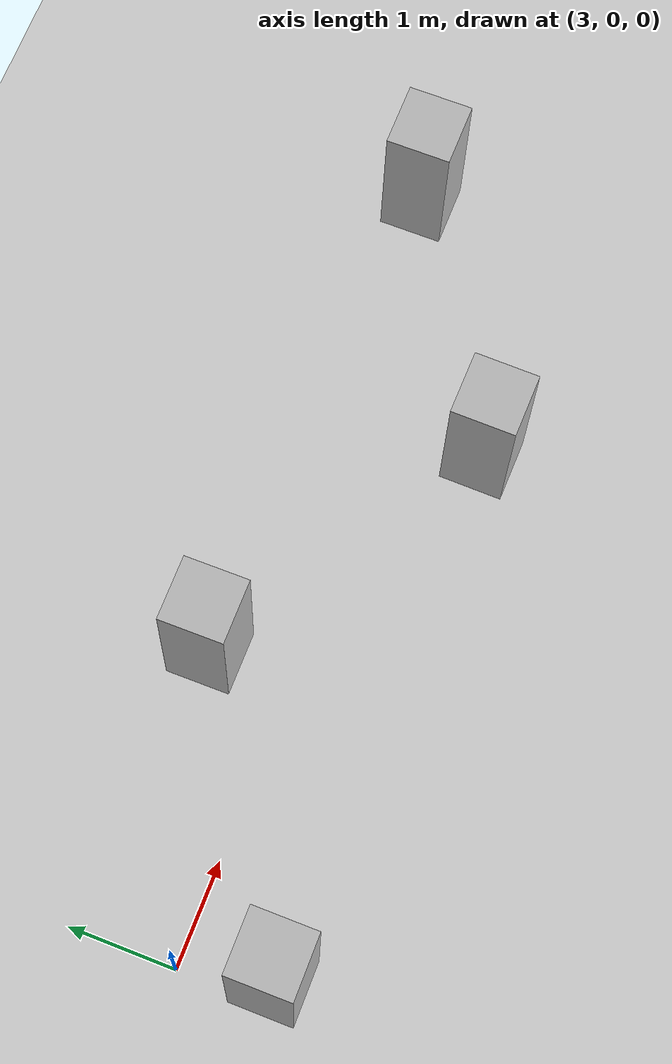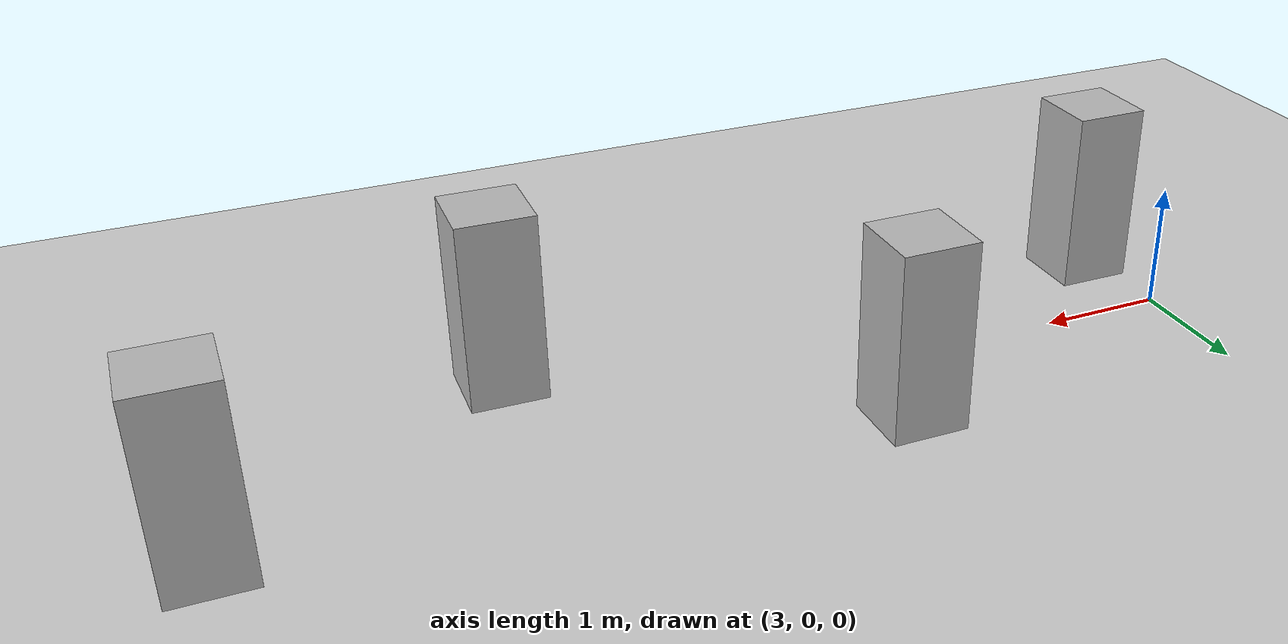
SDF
<?xml version="1.0"?>
<sdf version="1.6">
  <world name="v2-04c-q-static-s4493">
    <gravity>0 0 -9.81</gravity>
    <physics name="v2_deterministic" type="ode">
      <max_step_size>0.002</max_step_size>
      <real_time_update_rate>500</real_time_update_rate>
    </physics>
    <include>
      <uri>model://sun</uri>
    </include>
    <include>
      <uri>model://ground_plane</uri>
    </include>
    <model name="q-pillar-1">
      <static>true</static>
      <pose>3.209805915 -0.807758795 0.750000000 0 0 0.000171217</pose>
      <link name="link">
        <collision name="collision">
          <geometry>
            <box>
              <size>0.600000 0.600000 1.500000</size>
            </box>
          </geometry>
        </collision>
        <visual name="visual">
          <geometry>
            <box>
              <size>0.600000 0.600000 1.500000</size>
            </box>
          </geometry>
        </visual>
      </link>
    </model>
    <model name="q-pillar-2">
      <static>true</static>
      <pose>5.721271875 0.793565045 0.750000000 0 0 0.000608653</pose>
      <link name="link">
        <collision name="collision">
          <geometry>
            <box>
              <size>0.600000 0.600000 1.500000</size>
            </box>
          </geometry>
        </collision>
        <visual name="visual">
          <geometry>
            <box>
              <size>0.600000 0.600000 1.500000</size>
            </box>
          </geometry>
        </visual>
      </link>
    </model>
    <model name="q-pillar-3">
      <static>true</static>
      <pose>8.363540041 -0.841973130 0.750000000 0 0 -0.019559142</pose>
      <link name="link">
        <collision name="collision">
          <geometry>
            <box>
              <size>0.600000 0.600000 1.500000</size>
            </box>
          </geometry>
        </collision>
        <visual name="visual">
          <geometry>
            <box>
              <size>0.600000 0.600000 1.500000</size>
            </box>
          </geometry>
        </visual>
      </link>
    </model>
    <model name="q-pillar-4">
      <static>true</static>
      <pose>10.655255113 0.599157619 0.750000000 0 0 -0.005800082</pose>
      <link name="link">
        <collision name="collision">
          <geometry>
            <box>
              <size>0.600000 0.600000 1.500000</size>
            </box>
          </geometry>
        </collision>
        <visual name="visual">
          <geometry>
            <box>
              <size>0.600000 0.600000 1.500000</size>
            </box>
          </geometry>
        </visual>
      </link>
    </model>
  </world>
</sdf>
